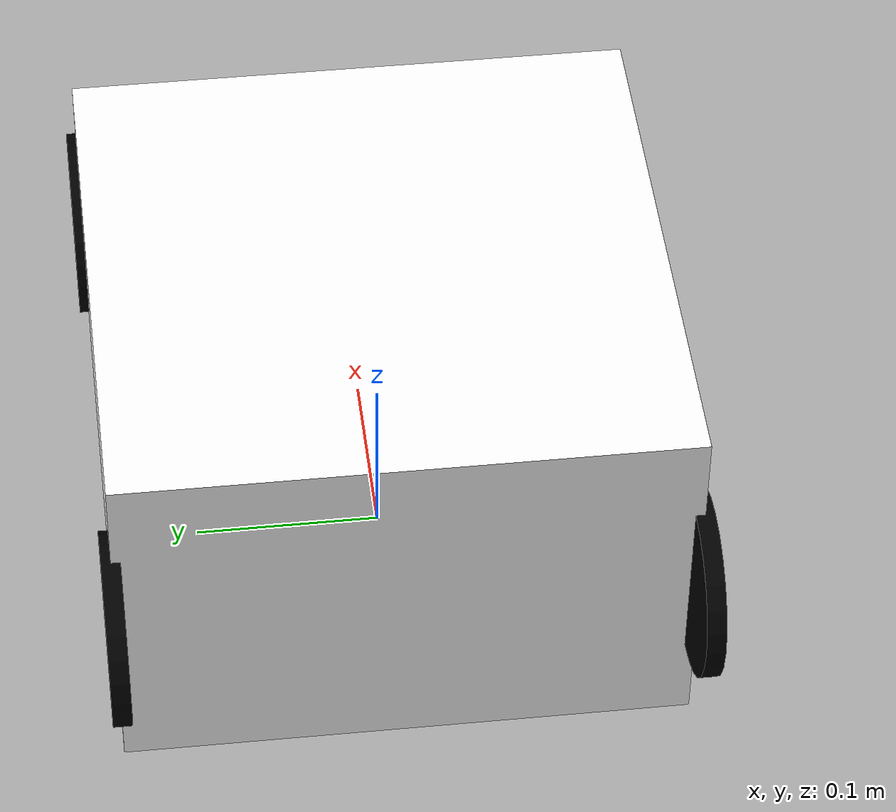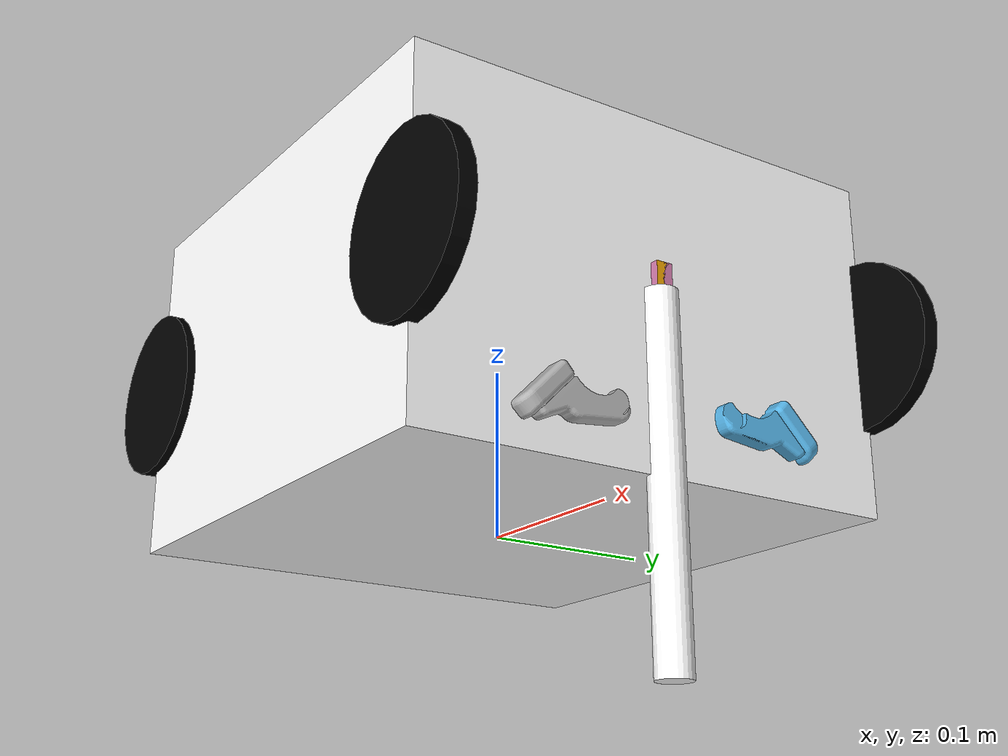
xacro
<?xml version="1.0"?>
<robot xmlns:xacro="http://www.ros.org/wiki/xacro" name="mybot">
 <xacro:include filename="$(find mybot_description)/urdf/camera_urdf.xacro" />
 <material name="white">
   <color rgba="1 1 1 1"/>
 </material>
 <material name="black">
   <color rgba="0 0 0 0"/>
 </material>
 <xacro:macro name="default_inertial" params="mass">
    <inertial>
      <mass value="${mass}" />
      <inertia ixx="1.0" ixy="0.0" ixz="0.0" iyy="1.0" iyz="0.0" izz="1.0" />
    </inertial>
 </xacro:macro>
 <xacro:property name="pi" value="3.1415" />
 <link name="chassis">
   <visual>
     <geometry>
        <box size="0.3 0.3 0.2"/>
     </geometry>
     <origin rpy="0 0 0" xyz="0 0 0.1"/>
     <material name="white"/>
   </visual>
   <xacro:default_inertial mass="10"/>
 </link>
 <link name="gripperarm">
   <visual>
     <geometry>
       <cylinder length="0.2" radius="0.01"/>
     </geometry>
     <origin rpy="0 1.57075 0" xyz="0.1 0 0"/>
     <material name="white"/>
   </visual>
 </link>
 <xacro:macro name="wheel_joint" params="prefix x y">
  <link name="${prefix}">
    <visual>
       <geometry>
          <cylinder length="0.01" radius="0.05"/>
       </geometry>
       <origin rpy="1.57075 0 0" xyz="0 0 0"/>
       <material name="black"/>
    </visual>
    <xacro:default_inertial mass="1"/>
  </link>
  <joint name="chassis_${prefix}" type="revolute">
        <parent link="chassis"/>
        <child link="${prefix}"/>
        <origin rpy="0 0 0" xyz="${x} ${y} 0.1"/>
  </joint>
  <transmission name="${prefix}_wheel_trans">
      <type>transmission_interface/SimpleTransmission</type>
      <actuator name="${prefix}_wheel_motor">
        <mechanicalReduction>1</mechanicalReduction>
      </actuator>
      <joint name="$chassis_{prefix}">
        <hardwareInterface>VelocityJointInterface</hardwareInterface>
      </joint>
    </transmission>
    <gazebo reference="${prefix}_wheel">
      <mu1 value="200.0"/>
      <mu2 value="100.0"/>
      <kp value="10000000.0" />
      <kd value="1.0" />
      <material>Gazebo/Grey</material>
    </gazebo>
 </xacro:macro>
 <xacro:wheel_joint prefix="front_left" x="0.15" y="0.15"/>
 <xacro:wheel_joint prefix="front_right" x="0.15" y="-0.15"/>
 <xacro:wheel_joint prefix="back_left" x="-0.15" y="0.15"/>
 <xacro:wheel_joint prefix="back_right" x="-0.15" y="-0.15"/>
 <joint name="chassis_gripperarm" type="continuous">
      <parent link="chassis"/>
      <child link="gripperarm"/>
      <origin rpy="0 1.5707 0" xyz="0.15 0 0.1"/>
 </joint>
 <transmission name="gripper_extension_trans" type="SimpleTransmission">
    <type>transmission_interface/SimpleTransmission</type>
    <actuator name="gripper_extension_motor">
      <mechanicalReduction>1</mechanicalReduction>
    </actuator>
    <joint name="chassis_gripperarm">
      <hardwareInterface>PositionJointInterface</hardwareInterface>
    </joint>
 </transmission>

<xacro:macro name="gripper_finger" params="side sign">
   <link name="${side}">
       <visual>
         <geometry>
            <box size="0.01 0.03 0.01"/>
         </geometry>
         <origin rpy="0 0 ${sign*0.7853}" xyz="0 0 0"/>
       </visual>
       <xacro:default_inertial mass="0.05"/>
   </link>
   <joint name="arm_to_${side}" type="revolute">
      <parent link="gripperarm"/>
      <child link="${side}"/>
      <origin rpy="0 0 ${sign*0.7853}" xyz="0 0 0"/>
   </joint>
  <transmission name="${side}_gripper_trans" type="SimpleTransmission">
      <type>transmission_interface/SimpleTransmission</type>
      <actuator name="${side}_gripper_motor">
        <mechanicalReduction>1</mechanicalReduction>
      </actuator>
      <joint name="arm_to_${side}">
        <hardwareInterface>PositionJointInterface</hardwareInterface>
      </joint>
   </transmission>
   <joint name="${side}_tip_joint" type="fixed">
      <parent link="${side}"/>
      <child link="${side}_tip"/>
    </joint>
    <link name="${side}_tip">
      <visual>
        <origin rpy="${((sign*-1)-1)/2*pi} 0 0" xyz="0.09137 0.00495 0"/>
        <geometry>
          <mesh filename="package://urdf_tutorial/meshes/l_finger_tip.dae"/>
        </geometry>
      </visual>
      <collision>
        <geometry>
          <mesh filename="package://urdf_tutorial/meshes/l_finger_tip.dae"/>
        </geometry>
        <origin rpy="${((sign*-1)-1)/2*pi} 0 0" xyz="0.09137 0.00495 0"/>
      </collision>
      <xacro:default_inertial mass="0.05"/>
    </link>
 </xacro:macro>
 <xacro:gripper_finger side="left_finger" sign="-1"/>
 <xacro:gripper_finger side="right_finger" sign="1"/>
 <xacro:camera name="camera_bot" camera_name="camera" image_format="L8" image_topic_name="image_raw" camera_info_topic_name="camera_info" parent="chassis" hfov="45" focal_length="772.548518" frame_id="optical_frame" hack_baseline="0" image_width="640" image_height="480">
   <origin rpy="0 0 0" xyz="0 0.15 0.3"/>
 </xacro:camera>
 <gazebo>
    <plugin name="gazebo_ros_control" filename="libgazebo_ros_control.so">
      <robotNamespace>/</robotNamespace>
    </plugin>
 </gazebo>
</robot>

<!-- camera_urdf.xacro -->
<!-- XML namespaces -->
<robot xmlns:xacro="http://www.ros.org/wiki/xacro">

  <xacro:include filename="$(find mybot_description)/urdf/camera_gazebo.xacro" />

  <xacro:macro name="camera" params="name camera_name image_format image_topic_name camera_info_topic_name parent hfov focal_length frame_id hack_baseline image_width image_height *origin">

    <joint name="${name}_frame_joint" type="fixed">
      <xacro:insert_block name="origin" />
      <parent link="${parent}"/>
      <child link="${name}_frame"/>
    </joint>
    <link name="${name}_frame">

      <inertial>
        <mass value="0.01" />
        <origin xyz="0 0 0" />
        <inertia ixx="0.001"  ixy="0.0"  ixz="0.0"
                 iyy="0.001"  iyz="0.0"
                 izz="0.001" />
      </inertial>

    </link>

    <joint name="${name}_optical_frame_joint" type="fixed">
      <origin xyz="0 0 0" rpy="-1.5707 0.0 -1.5707" />
      <parent link="${name}_frame" />
      <child link="${name}_optical_frame"/>
    </joint>
    <link name="${name}_optical_frame"/>

    <!-- extensions -->
    <xacro:wge100_camera_gazebo_v0 name="${name}" camera_name="${camera_name}" image_format="${image_format}" image_topic_name="${image_topic_name}"
                                   camera_info_topic_name="${camera_info_topic_name}"
                                   hfov="${hfov}" focal_length="${focal_length}"
                                   frame_id="${frame_id}" hack_baseline="${hack_baseline}"
                                   image_width="${image_width}" image_height="${image_height}"/>

  </xacro:macro>

</robot>
